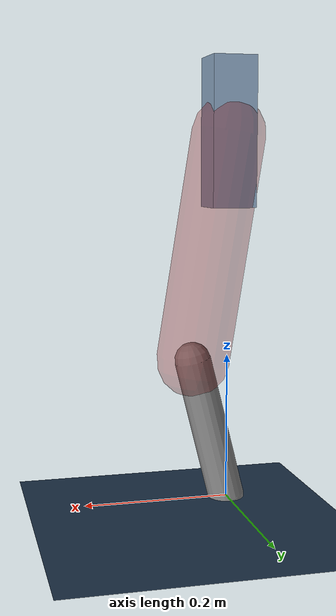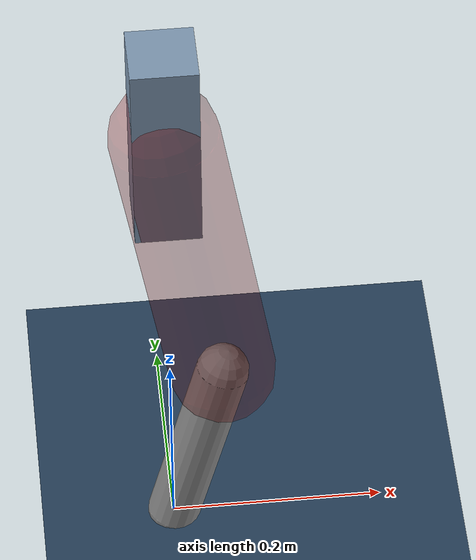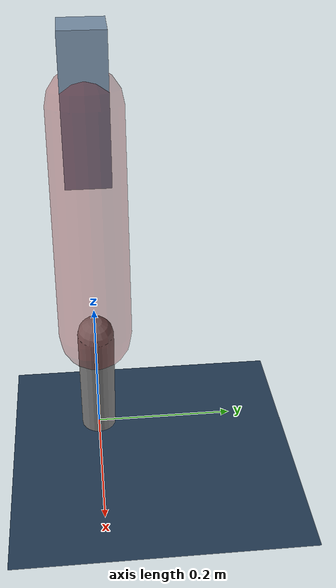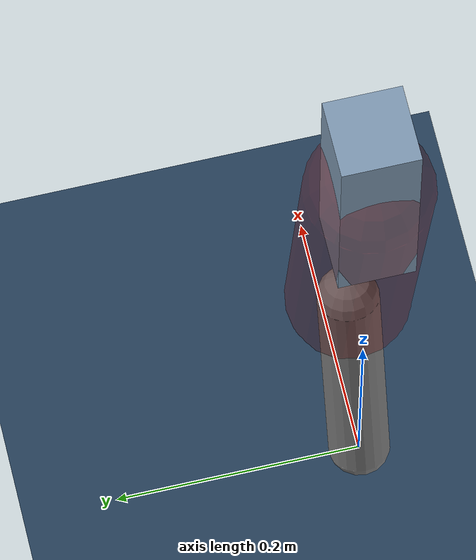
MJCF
<mujoco model="Hopper2D">
	<compiler inertiafromgeom="true" angle="radian" />
	<option timestep="0.001" integrator="implicit" cone="elliptic" solver="Newton" tolerance="1e-10" />

	<default>
		<geom contype="1" conaffinity="1" condim="3" friction="2 0.005 0.0001" solref="0.005 1" />
		<joint limited="true" damping="0.1" />
	</default>

	<asset>
		<texture name="skybox" type="skybox" builtin="gradient" rgb1=".4 .6 .8" rgb2="0 0 0" width="800" height="800" />
		<texture name="grid" type="2d" builtin="checker" rgb1=".1 .2 .3" rgb2=".2 .3 .4" width="300" height="300" mark="edge" markrgb=".2 .3 .4" />
		<material name="ground" texture="grid" texrepeat="1 1" texuniform="true" reflectance="0.1" />
		<material name="leg" rgba="0.5 0.6 0.7 1" />
	</asset>

	<worldbody>

		<geom name="floor" type="plane" size="5 5 0.25" material="ground" />

		<light directional="false" diffuse="0.8 0.8 0.8" specular="0.3 0.3 0.3" pos="0 0 2" dir="0 0 -1" />
		<light mode="targetbodycom" target="base" directional="false" diffuse="0.8 0.8 0.8" specular="0.3 0.3 0.3" pos="0 0 2" dir="0 0 -1" />

		<camera name="fixed" pos="0 -2 1" xyaxes="1 0 0 0 0 1" />
		<camera name="tracking" mode="trackcom" pos="0 -3 1" />

		<body name="root" pos="0 0 0.5037934587230813">
			<joint name="slide_x" type="slide" axis="1 0 0" range="-100 100" />
			<joint name="slide_z" type="slide" axis="0 0 1" range="0 10" />

			<body name="base" pos="0 0 0">
				<geom name="torso" type="box" size="0.03 0.03 0.1" mass="2.443" material="leg" />

				<body name="link1" pos="0 0 0" euler="0 1.412832485543834 0">
					<joint type="hinge" axis="0 -1 0" pos="0 0 0" name="hinge1" limited="true" range="-3.14 3.14" stiffness="0" damping="0.1" />
					<geom name="thigh" type="capsule" fromto="0 0 0 0.31267240909248095 0 0" size="0.05" rgba="0.5 0 0 0.3" mass="1.0231827454589466" />

					<body name="link2" pos="0.31267240909248095 0 0" euler="0 0.4050277892849944 0">
						<joint type="hinge" axis="0 -1 0" pos="0 0 0" name="hinge2" limited="true" range="-3.14 3.14" stiffness="0" damping="0.1" />
						<geom name="shank" type="capsule" fromto="0 0 0 0.2011210496306004 0 0" size="0.025" mass="0.40180894466754036" />

					</body>
				</body>
			</body>
		</body>
	</worldbody>

	<actuator>
		<motor name="torque1" joint="hinge1" ctrlrange="-31.20759268027047 31.20759268027047" ctrllimited="true" gear="1" />
		<motor name="torque2" joint="hinge2" ctrlrange="-108.29147921683337 108.29147921683337" ctrllimited="true" gear="1" />
	</actuator>
</mujoco>
